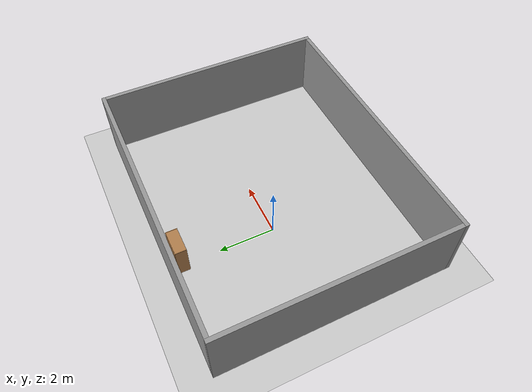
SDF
<sdf version="1.6">
 <world name="default">
  <light name="sun" type="directional">
   <pose>0 0 10 0 -0 0</pose>
   <diffuse>0.8 0.8 0.8 1</diffuse>
   <specular>0.2 0.2 0.2 1</specular>
   <attenuation>
    <range>1000</range>
    <constant>0.9</constant>
    <linear>0.01</linear>
    <quadratic>0.001</quadratic>
   </attenuation>
   <direction>-0.5 0.1 -0.9</direction>
  </light>
  <model name="ground_plane">
   <static>1</static>
   <link name="link">
    <collision name="collision">
     <geometry><plane><normal>0 0 1</normal><size>100 100</size></plane></geometry>
     <surface><friction><ode><mu>100</mu><mu2>50</mu2></ode></friction></surface>
    </collision>
    <visual name="visual">
     <cast_shadows>0</cast_shadows>
     <geometry><plane><normal>0 0 1</normal><size>100 100</size></plane></geometry>
     <material>
      <script><uri>file://media/materials/scripts/gazebo.material</uri><name>Gazebo/Grey</name></script>
     </material>
    </visual>
   </link>
  </model>
  <gravity>0 0 -9.8</gravity>
  <magnetic_field>6e-06 2.3e-05 -4.2e-05</magnetic_field>
  <atmosphere type="adiabatic"/>
  <physics name="default_physics" default="0" type="ode">
   <max_step_size>0.001</max_step_size>
   <real_time_factor>1</real_time_factor>
   <real_time_update_rate>1000</real_time_update_rate>
  </physics>
  <scene><ambient>0.4 0.4 0.4 1</ambient><background>0.7 0.7 0.7 1</background><shadows>1</shadows></scene>
  <audio><device>default</device></audio>
  <spherical_coordinates>
   <surface_model>EARTH_WGS84</surface_model>
   <latitude_deg>0</latitude_deg>
   <longitude_deg>0</longitude_deg>
   <elevation>0</elevation>
   <heading_deg>0</heading_deg>
  </spherical_coordinates>
  <model name="bookshelf">
   <static>1</static>
   <link name="link">
    <inertial><mass>1</mass></inertial>
    <collision name="back">
     <pose>0 0.005 0.6 0 -0 0</pose>
     <geometry><box><size>0.9 0.01 1.2</size></box></geometry>
    </collision>
    <visual name="visual1">
     <pose>0 0.005 0.6 0 -0 0</pose>
     <geometry><box><size>0.9 0.01 1.2</size></box></geometry>
     <material>
      <script><uri>file://media/materials/scripts/gazebo.material</uri><name>Gazebo/Wood</name></script>
     </material>
    </visual>
    <collision name="left_side">
     <pose>0.45 -0.195 0.6 0 -0 0</pose>
     <geometry><box><size>0.02 0.4 1.2</size></box></geometry>
    </collision>
    <visual name="visual2">
     <pose>0.45 -0.195 0.6 0 -0 0</pose>
     <geometry><box><size>0.02 0.4 1.2</size></box></geometry>
     <material>
      <script><uri>file://media/materials/scripts/gazebo.material</uri><name>Gazebo/Wood</name></script>
     </material>
    </visual>
    <collision name="right_side">
     <pose>-0.45 -0.195 0.6 0 -0 0</pose>
     <geometry><box><size>0.02 0.4 1.2</size></box></geometry>
    </collision>
    <visual name="visual3">
     <pose>-0.45 -0.195 0.6 0 -0 0</pose>
     <geometry><box><size>0.02 0.4 1.2</size></box></geometry>
     <material>
      <script><uri>file://media/materials/scripts/gazebo.material</uri><name>Gazebo/Wood</name></script>
     </material>
    </visual>
    <collision name="bottom">
     <pose>0 -0.195 0.03 0 -0 0</pose>
     <geometry><box><size>0.88 0.4 0.06</size></box></geometry>
    </collision>
    <visual name="visual4">
     <pose>0 -0.195 0.03 0 -0 0</pose>
     <geometry><box><size>0.88 0.4 0.06</size></box></geometry>
     <material>
      <script><uri>file://media/materials/scripts/gazebo.material</uri><name>Gazebo/Wood</name></script>
     </material>
    </visual>
    <collision name="top">
     <pose>0 -0.195 1.19 0 -0 0</pose>
     <geometry><box><size>0.88 0.4 0.02</size></box></geometry>
    </collision>
    <visual name="visual5">
     <pose>0 -0.195 1.19 0 -0 0</pose>
     <geometry><box><size>0.88 0.4 0.02</size></box></geometry>
     <material>
      <script><uri>file://media/materials/scripts/gazebo.material</uri><name>Gazebo/Wood</name></script>
     </material>
    </visual>
    <collision name="low_shelf">
     <pose>0 -0.195 0.43 0 -0 0</pose>
     <geometry><box><size>0.88 0.4 0.02</size></box></geometry>
    </collision>
    <visual name="visual6">
     <pose>0 -0.195 0.43 0 -0 0</pose>
     <geometry><box><size>0.88 0.4 0.02</size></box></geometry>
     <material>
      <script><uri>file://media/materials/scripts/gazebo.material</uri><name>Gazebo/Wood</name></script>
     </material>
    </visual>
    <collision name="high_shelf">
     <pose>0 -0.195 0.8 0 -0 0</pose>
     <geometry><box><size>0.88 0.4 0.02</size></box></geometry>
    </collision>
    <visual name="visual7">
     <pose>0 -0.195 0.8 0 -0 0</pose>
     <geometry><box><size>0.88 0.4 0.02</size></box></geometry>
     <material>
      <script><uri>file://media/materials/scripts/gazebo.material</uri><name>Gazebo/Wood</name></script>
     </material>
    </visual>
   </link>
   <pose>0.240281 3.55102 0 0 -0 0</pose>
  </model>
  <model name="assignment3">
   <pose>1.2209 -0.39981 0 0 -0 0</pose>
   <link name="Wall_13">
    <collision name="Wall_13_Collision">
     <geometry><box><size>10.25 0.15 2.5</size></box></geometry>
     <pose>0 0 1.25 0 -0 0</pose>
    </collision>
    <visual name="Wall_13_Visual">
     <pose>0 0 1.25 0 -0 0</pose>
     <geometry><box><size>10.25 0.15 2.5</size></box></geometry>
     <material>
      <script><uri>file://media/materials/scripts/gazebo.material</uri><name>Gazebo/Grey</name></script>
      <ambient>1 1 1 1</ambient>
     </material>
     <meta><layer>0</layer></meta>
    </visual>
    <pose>0 -4.175 0 0 -0 0</pose>
   </link>
   <link name="Wall_16">
    <collision name="Wall_16_Collision">
     <geometry><box><size>8.5 0.15 2.5</size></box></geometry>
     <pose>0 0 1.25 0 -0 0</pose>
    </collision>
    <visual name="Wall_16_Visual">
     <pose>0 0 1.25 0 -0 0</pose>
     <geometry><box><size>8.5 0.15 2.5</size></box></geometry>
     <material>
      <script><uri>file://media/materials/scripts/gazebo.material</uri><name>Gazebo/Grey</name></script>
      <ambient>1 1 1 1</ambient>
     </material>
     <meta><layer>0</layer></meta>
    </visual>
    <pose>-5.05 0 0 0 -0 1.5708</pose>
   </link>
   <link name="Wall_17">
    <collision name="Wall_17_Collision">
     <geometry><box><size>10.25 0.15 2.5</size></box></geometry>
     <pose>0 0 1.25 0 -0 0</pose>
    </collision>
    <visual name="Wall_17_Visual">
     <pose>0 0 1.25 0 -0 0</pose>
     <geometry><box><size>10.25 0.15 2.5</size></box></geometry>
     <material>
      <script><uri>file://media/materials/scripts/gazebo.material</uri><name>Gazebo/Grey</name></script>
      <ambient>1 1 1 1</ambient>
     </material>
     <meta><layer>0</layer></meta>
    </visual>
    <pose>0 4.175 0 0 -0 0</pose>
   </link>
   <link name="Wall_18">
    <collision name="Wall_18_Collision">
     <geometry><box><size>8.5 0.15 2.5</size></box></geometry>
     <pose>0 0 1.25 0 -0 0</pose>
    </collision>
    <visual name="Wall_18_Visual">
     <pose>0 0 1.25 0 -0 0</pose>
     <geometry><box><size>8.5 0.15 2.5</size></box></geometry>
     <material>
      <script><uri>file://media/materials/scripts/gazebo.material</uri><name>Gazebo/Grey</name></script>
      <ambient>1 1 1 1</ambient>
     </material>
     <meta><layer>0</layer></meta>
    </visual>
    <pose>5.05 0 0 0 -0 -1.5708</pose>
   </link>
   <static>1</static>
  </model>
 </world>
</sdf>
